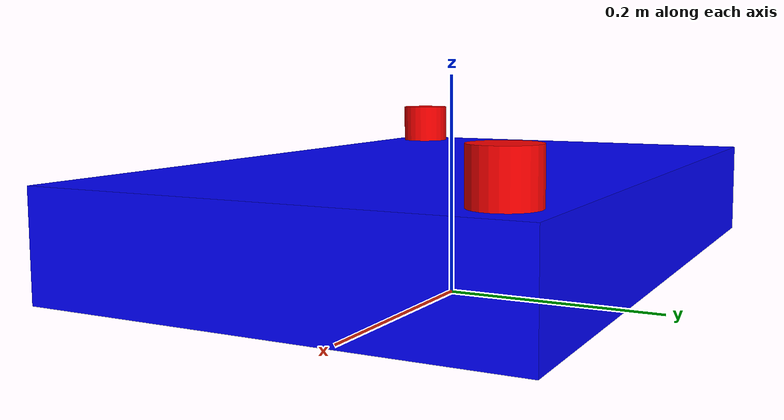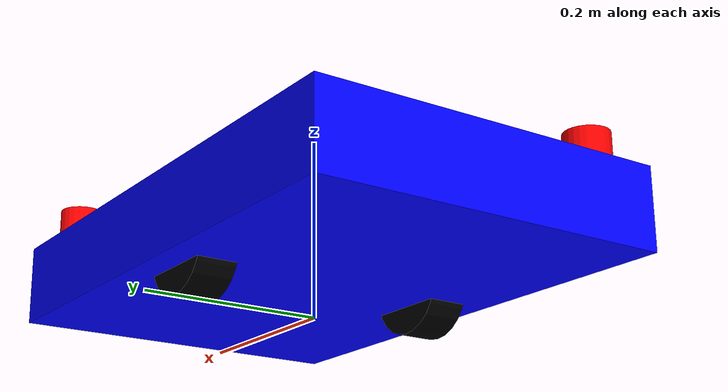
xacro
<?xml version="1.0"?>
<robot name="diff_drive_robot" xmlns:xacro="http://www.ros.org/wiki/xacro">

  <!--     PROPERTIES        -->
  <xacro:property name="wheel_radius"    value="0.05035"/>
  <xacro:property name="wheel_width"     value="0.045"/>
  <xacro:property name="wheel_base"      value="0.29"/>
  <xacro:property name="base_length"     value="0.60"/>
  <xacro:property name="base_width"      value="0.40"/>
  <xacro:property name="base_height"     value="0.09"/>

  <!-- lidar offset from base_link center(offseti so od centra navidezne akse-sredisca motorjev) -->
  <xacro:property name="lidar_x"         value="0.255"/>
  <xacro:property name="lidar_y"         value="0.160"/>
  <xacro:property name="lidar_z"         value="0.09"/>

  <!--      BASE LINK        -->
  <link name="base_footprint"/>

  <joint name="base_footprint_joint" type="fixed">
    <parent link="base_footprint"/>
    <child  link="base_link"/>
    <origin xyz="0 0 ${wheel_radius}" rpy="0 0 3.14159"/>
  </joint>

  <link name="base_link">
    <visual>
      <geometry>
        <box size="${base_length} ${base_width} ${base_height}"/>
      </geometry>
      <origin xyz="0 0 0.025" rpy="0 0 0"/>
      <material name="blue">
        <color rgba="0 0 1 1"/>
      </material>
    </visual>
    <collision>
      <geometry>
        <box size="${base_length} ${base_width} ${base_height}"/>
      </geometry>
    </collision>
    <inertial>
      <mass value="2.0"/>
      <inertia ixx="0.01" ixy="0" ixz="0"
                           iyy="0.01" iyz="0"
                                       izz="0.01"/>
    </inertial>
  </link>

  <!--      LEFT WHEEL       -->
  <joint name="left_wheel_joint" type="continuous">
    <parent link="base_link"/>
    <child  link="left_wheel"/>
    <origin xyz="0 ${wheel_base/2} 0" rpy="-${pi/2} 0 0"/>
    <axis xyz="0 0 1"/>
  </joint>

  <link name="left_wheel">
    <visual>
      <geometry>
        <cylinder radius="${wheel_radius}" length="${wheel_width}"/>
      </geometry>
      <material name="black">
        <color rgba="0 0 0 1"/>
      </material>
    </visual>
    <collision>
      <geometry>
        <cylinder radius="${wheel_radius}" length="${wheel_width}"/>
      </geometry>
    </collision>
    <inertial>
      <mass value="0.3"/>
      <inertia ixx="0.001" ixy="0" ixz="0"
                            iyy="0.001" iyz="0"
                                        izz="0.001"/>
    </inertial>
  </link>

  <!--      RIGHT WHEEL      -->
  <joint name="right_wheel_joint" type="continuous">
    <parent link="base_link"/>
    <child  link="right_wheel"/>
    <origin xyz="0 ${-wheel_base/2} 0" rpy="-${pi/2} 0 0"/>
    <axis xyz="0 0 1"/>
  </joint>

  <link name="right_wheel">
    <visual>
      <geometry>
        <cylinder radius="${wheel_radius}" length="${wheel_width}"/>
      </geometry>
      <material name="black">
        <color rgba="0 0 0 1"/>
      </material>
    </visual>
    <collision>
      <geometry>
        <cylinder radius="${wheel_radius}" length="${wheel_width}"/>
      </geometry>
    </collision>
    <inertial>
      <mass value="0.3"/>
      <inertia ixx="0.001" ixy="0" ixz="0"
                            iyy="0.001" iyz="0"
                                        izz="0.001"/>
    </inertial>
  </link>

  <!--     LIDAR_MERGED      -->
  <joint name="laser_merged_joint" type="fixed">
    <parent link="base_link"/>
    <child  link="laser"/>
    <origin xyz="${lidar_x} ${lidar_y} ${lidar_z}" rpy="0 0 3.14159"/>
  </joint>

  <link name="laser">
    <visual>
      <geometry>
        <cylinder radius="0.025" length="0.04"/>
      </geometry>
      <material name="red">
        <color rgba="1 0 0 1"/>
      </material>
    </visual>
    <collision>
      <geometry>
        <cylinder radius="0.025" length="0.04"/>
      </geometry>
    </collision>
    <inertial>
      <mass value="0.1"/>
      <inertia ixx="0.0001" ixy="0" ixz="0"
                             iyy="0.0001" iyz="0"
                                          izz="0.0001"/>
    </inertial>
  </link>

  <!--     LIDAR_FRONT       -->
  <joint name="laser_front_joint" type="fixed">
    <parent link="base_link"/>
    <child  link="laser_front"/>
    <origin xyz="${lidar_x} ${lidar_y} ${lidar_z}" rpy="0 0 3.14159"/>
  </joint>

  <link name="laser_front">
    <visual>
      <geometry>
        <cylinder radius="0.025" length="0.04"/>
      </geometry>
      <material name="red">
        <color rgba="1 0 0 1"/>
      </material>
    </visual>
    <collision>
      <geometry>
        <cylinder radius="0.025" length="0.04"/>
      </geometry>
    </collision>
    <inertial>
      <mass value="0.1"/>
      <inertia ixx="0.0001" ixy="0" ixz="0"
                             iyy="0.0001" iyz="0"
                                          izz="0.0001"/>
    </inertial>
  </link>

  <!--     LIDAR_BACK       -->
  <joint name="laser_back_joint" type="fixed">
    <parent link="base_link"/>
    <child  link="laser_back"/>
    <origin xyz="${-lidar_x} ${-lidar_y} ${lidar_z}" rpy="0 0 3.14159"/>
  </joint>

  <link name="laser_back">
    <visual>
      <geometry>
        <cylinder radius="0.025" length="0.04"/>
      </geometry>
      <material name="red">
        <color rgba="1 0 0 1"/>
      </material>
    </visual>
    <collision>
      <geometry>
        <cylinder radius="0.025" length="0.04"/>
      </geometry>
    </collision>
    <inertial>
      <mass value="0.1"/>
      <inertia ixx="0.0001" ixy="0" ixz="0"
                             iyy="0.0001" iyz="0"
                                          izz="0.0001"/>
    </inertial>
  </link>

</robot>
